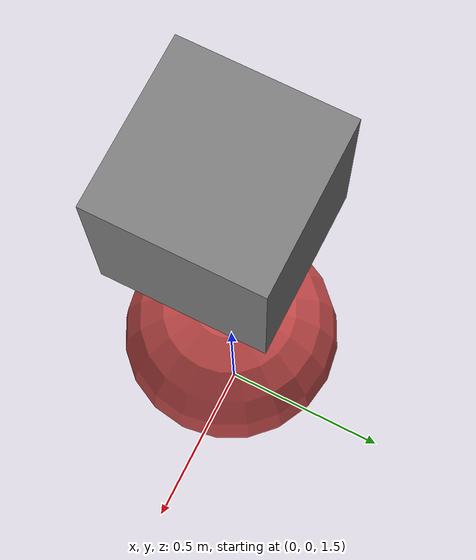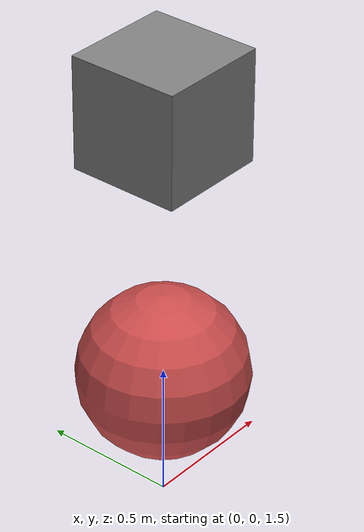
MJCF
<mujoco>
  <option gravity="0 0 -9.81" />
  <worldbody>

    <body name="object_1" pos="0 0 2">
      <geom type="sphere" size="0.3" density="1" rgba="0.8 0.3 0.3 1" />
      <joint name="object_1_joint" type="free" />
    </body>

    <body name="object_3" pos="0 0 3">
      <geom type="box" size="0.2 0.2 0.2" rgba="0.5 0.5 0.5 1" />
    </body>
  </worldbody>
<joint name="joint_object_1_object_3" type="revolute" body1="object_1" body2="object_3" /></mujoco>
